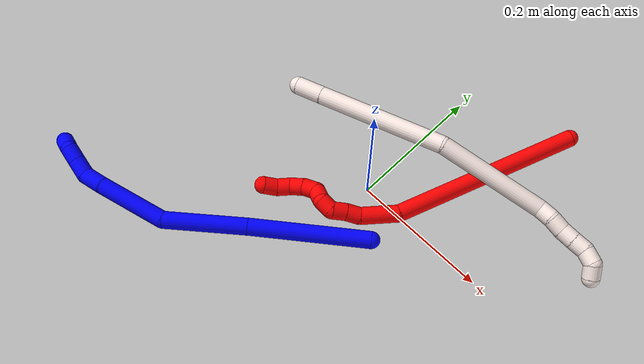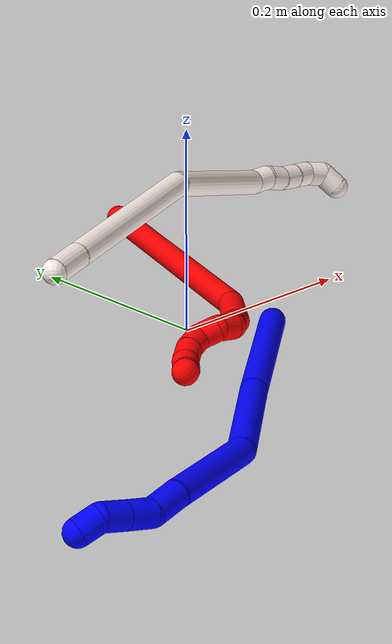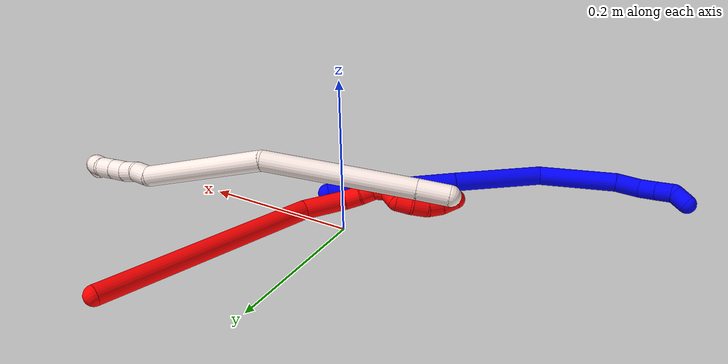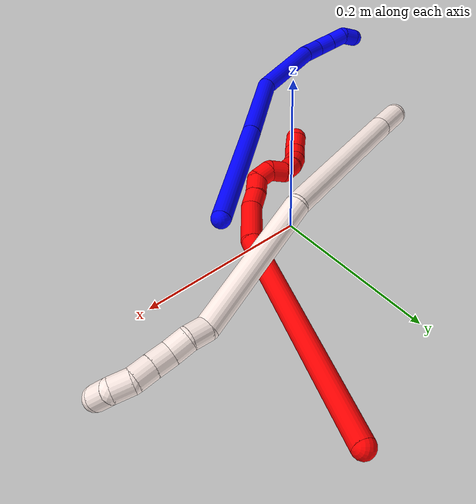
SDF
<sdf version="1.7">
 <world name="default">
  <model name="photoneo_s_sensor">
   <static>1</static>
   <pose>0 0 2 1.57079 1.57079 3.14159</pose>
   <link name="link">
    <inertial><mass>0.1</mass></inertial>
    <sensor name="sensor" type="depth">
     <update_rate>30</update_rate>
     <camera>
      <horizontal_fov>1.22</horizontal_fov>
      <image><width>1920</width><height>1200</height><format>B8G8R8</format></image>
      <clip><near>0.1</near><far>4</far></clip>
      <depth_camera><output>points</output></depth_camera>
     </camera>
     <plugin name="camera_plugin" filename="libgazebo_ros_depth_camera.so">
      <baseline>0.2</baseline>
      <alwaysOn>1</alwaysOn>
      <updateRate>0.0</updateRate>
      <cameraName>camera_ir</cameraName>
      <imageTopicName>/camera/color/image_raw</imageTopicName>
      <cameraInfoTopicName>/camera/color/camera_info</cameraInfoTopicName>
      <depthImageTopicName>/camera/depth/image_raw</depthImageTopicName>
      <depthImageCameraInfoTopicName>/camera/depth/camera_info</depthImageCameraInfoTopicName>
      <pointCloudTopicName>/camera/depth/points</pointCloudTopicName>
      <frameName>fr_optical</frameName>
      <pointCloudCutoff>0.1</pointCloudCutoff>
      <pointCloudCutoffMax>2.0</pointCloudCutoffMax>
      <distortionK1>0</distortionK1>
      <distortionK2>0</distortionK2>
      <distortionK3>0</distortionK3>
      <distortionT1>0</distortionT1>
      <distortionT2>0</distortionT2>
      <CxPrime>0</CxPrime>
      <Cx>0</Cx>
      <Cy>0</Cy>
      <focalLength>0</focalLength>
      <hackBaseline>0</hackBaseline>
     </plugin>
    </sensor>
   </link>
  </model>
  <model name="bin">
   <static>1</static>
   <link name="bottom">
    <collision name="collision-bottom">
     <pose>0 0 -0.01 0 -0 0</pose>
     <geometry><box><size>0.8 0.6 0.02</size></box></geometry>
     <surface>
      <friction><ode><mu>100</mu><mu2>100</mu2></ode></friction>
      <contact><collide_bitmask>65535</collide_bitmask></contact>
     </surface>
    </collision>
   </link>
   <link name="west_wall">
    <collision name="collision-west_wall">
     <pose>-0.41 0 0.1 0 -0 0</pose>
     <geometry><box><size>0.02 0.6 0.2</size></box></geometry>
     <surface>
      <friction><ode><mu>100</mu><mu2>100</mu2></ode></friction>
      <contact><collide_bitmask>65535</collide_bitmask></contact>
     </surface>
    </collision>
   </link>
   <link name="east_wall">
    <collision name="collision-east_wall">
     <pose>0.41 0 0.1 0 -0 0</pose>
     <geometry><box><size>0.02 0.6 0.2</size></box></geometry>
     <surface>
      <friction><ode><mu>100</mu><mu2>100</mu2></ode></friction>
      <contact><collide_bitmask>65535</collide_bitmask></contact>
     </surface>
    </collision>
   </link>
   <link name="south_wall">
    <collision name="collision-south_wall">
     <pose>0 -0.31 0.1 0 -0 0</pose>
     <geometry><box><size>0.8 0.02 0.2</size></box></geometry>
     <surface>
      <friction><ode><mu>100</mu><mu2>100</mu2></ode></friction>
      <contact><collide_bitmask>65535</collide_bitmask></contact>
     </surface>
    </collision>
   </link>
   <link name="north_wall">
    <collision name="collision-north_wall">
     <pose>0 0.31 0.1 0 -0 0</pose>
     <geometry><box><size>0.8 0.02 0.2</size></box></geometry>
     <surface>
      <friction><ode><mu>100</mu><mu2>100</mu2></ode></friction>
      <contact><collide_bitmask>65535</collide_bitmask></contact>
     </surface>
    </collision>
   </link>
  </model>
  <model name="1">
   <static>0</static>
   <link name="1">
    <collision name="collision-cylinder-e_1_1_4">
     <pose>-0.046609 -0.000448 0.073208 0.006125 -0.566937 -0.001784</pose>
     <geometry><cylinder><radius>0.0125</radius><length>0.173574</length></cylinder></geometry>
     <surface>
      <friction><ode><mu>1.16</mu><mu2>1.16</mu2><slip1>0</slip1><slip2>0</slip2></ode></friction>
      <contact><ode><kp>1e+06</kp><kd>1</kd><max_vel>0</max_vel><min_depth>0.001</min_depth></ode></contact>
     </surface>
    </collision>
    <visual name="visual-cylinder-e_1_1_4">
     <pose>-0.046609 -0.000448 0.073208 0.006125 -0.566937 -0.001784</pose>
     <geometry><cylinder><radius>0.0125</radius><length>0.173574</length></cylinder></geometry>
     <material><ambient>0 0 1 1</ambient></material>
    </visual>
    <collision name="collision-cylinder-e_2_4_5">
     <pose>-0.125567 0.000679 0.197621 -0.030757 -0.563217 0.008899</pose>
     <geometry><cylinder><radius>0.0125</radius><length>0.121177</length></cylinder></geometry>
     <surface>
      <friction><ode><mu>1.16</mu><mu2>1.16</mu2><slip1>0</slip1><slip2>0</slip2></ode></friction>
      <contact><ode><kp>1e+06</kp><kd>1</kd><max_vel>0</max_vel><min_depth>0.001</min_depth></ode></contact>
     </surface>
    </collision>
    <visual name="visual-cylinder-e_2_4_5">
     <pose>-0.125567 0.000679 0.197621 -0.030757 -0.563217 0.008899</pose>
     <geometry><cylinder><radius>0.0125</radius><length>0.121177</length></cylinder></geometry>
     <material><ambient>0 0 1 1</ambient></material>
    </visual>
    <collision name="collision-cylinder-e_3_5_6">
     <pose>-0.172079 -0.014183 0.295765 0.336834 -0.277445 -0.047469</pose>
     <geometry><cylinder><radius>0.0125</radius><length>0.103421</length></cylinder></geometry>
     <surface>
      <friction><ode><mu>1.16</mu><mu2>1.16</mu2><slip1>0</slip1><slip2>0</slip2></ode></friction>
      <contact><ode><kp>1e+06</kp><kd>1</kd><max_vel>0</max_vel><min_depth>0.001</min_depth></ode></contact>
     </surface>
    </collision>
    <visual name="visual-cylinder-e_3_5_6">
     <pose>-0.172079 -0.014183 0.295765 0.336834 -0.277445 -0.047469</pose>
     <geometry><cylinder><radius>0.0125</radius><length>0.103421</length></cylinder></geometry>
     <material><ambient>0 0 1 1</ambient></material>
    </visual>
    <collision name="collision-cylinder-e_4_6_7">
     <pose>-0.188231 -0.035077 0.358179 0.280424 -0.122898 -0.017367</pose>
     <geometry><cylinder><radius>0.0125</radius><length>0.032454</length></cylinder></geometry>
     <surface>
      <friction><ode><mu>1.16</mu><mu2>1.16</mu2><slip1>0</slip1><slip2>0</slip2></ode></friction>
      <contact><ode><kp>1e+06</kp><kd>1</kd><max_vel>0</max_vel><min_depth>0.001</min_depth></ode></contact>
     </surface>
    </collision>
    <visual name="visual-cylinder-e_4_6_7">
     <pose>-0.188231 -0.035077 0.358179 0.280424 -0.122898 -0.017367</pose>
     <geometry><cylinder><radius>0.0125</radius><length>0.032454</length></cylinder></geometry>
     <material><ambient>0 0 1 1</ambient></material>
    </visual>
    <collision name="collision-cylinder-e_5_7_8">
     <pose>-0.19057 -0.048029 0.383093 0.732843 -0.027501 -0.010554</pose>
     <geometry><cylinder><radius>0.0125</radius><length>0.025407</length></cylinder></geometry>
     <surface>
      <friction><ode><mu>1.16</mu><mu2>1.16</mu2><slip1>0</slip1><slip2>0</slip2></ode></friction>
      <contact><ode><kp>1e+06</kp><kd>1</kd><max_vel>0</max_vel><min_depth>0.001</min_depth></ode></contact>
     </surface>
    </collision>
    <visual name="visual-cylinder-e_5_7_8">
     <pose>-0.19057 -0.048029 0.383093 0.732843 -0.027501 -0.010554</pose>
     <geometry><cylinder><radius>0.0125</radius><length>0.025407</length></cylinder></geometry>
     <material><ambient>0 0 1 1</ambient></material>
    </visual>
    <collision name="collision-cylinder-e_6_8_9">
     <pose>-0.191324 -0.064373 0.400925 0.751887 -0.035251 -0.013915</pose>
     <geometry><cylinder><radius>0.0125</radius><length>0.022998</length></cylinder></geometry>
     <surface>
      <friction><ode><mu>1.16</mu><mu2>1.16</mu2><slip1>0</slip1><slip2>0</slip2></ode></friction>
      <contact><ode><kp>1e+06</kp><kd>1</kd><max_vel>0</max_vel><min_depth>0.001</min_depth></ode></contact>
     </surface>
    </collision>
    <visual name="visual-cylinder-e_6_8_9">
     <pose>-0.191324 -0.064373 0.400925 0.751887 -0.035251 -0.013915</pose>
     <geometry><cylinder><radius>0.0125</radius><length>0.022998</length></cylinder></geometry>
     <material><ambient>0 0 1 1</ambient></material>
    </visual>
    <collision name="collision-cylinder-e_7_9_2">
     <pose>-0.18761 -0.075183 0.418495 0.312121 0.403773 0.064385</pose>
     <geometry><cylinder><radius>0.0125</radius><length>0.02097</length></cylinder></geometry>
     <surface>
      <friction><ode><mu>1.16</mu><mu2>1.16</mu2><slip1>0</slip1><slip2>0</slip2></ode></friction>
      <contact><ode><kp>1e+06</kp><kd>1</kd><max_vel>0</max_vel><min_depth>0.001</min_depth></ode></contact>
     </surface>
    </collision>
    <visual name="visual-cylinder-e_7_9_2">
     <pose>-0.18761 -0.075183 0.418495 0.312121 0.403773 0.064385</pose>
     <geometry><cylinder><radius>0.0125</radius><length>0.02097</length></cylinder></geometry>
     <material><ambient>0 0 1 1</ambient></material>
    </visual>
    <collision name="collision-sphere-2">
     <pose>-0.183491 -0.078144 0.427671 0 -0 0</pose>
     <geometry><sphere><radius>0.0125</radius></sphere></geometry>
     <surface>
      <friction><ode><mu>1.16</mu><mu2>1.16</mu2><slip1>0</slip1><slip2>0</slip2></ode></friction>
      <contact><ode><kp>1e+06</kp><kd>1</kd><max_vel>0</max_vel><min_depth>0.001</min_depth></ode></contact>
     </surface>
    </collision>
    <visual name="visual-sphere-2">
     <pose>-0.183491 -0.078144 0.427671 0 -0 0</pose>
     <geometry><sphere><radius>0.0125</radius></sphere></geometry>
     <material><ambient>0 0 1 1</ambient></material>
    </visual>
    <collision name="collision-sphere-9">
     <pose>-0.19173 -0.072222 0.409319 0 -0 0</pose>
     <geometry><sphere><radius>0.0125</radius></sphere></geometry>
     <surface>
      <friction><ode><mu>1.16</mu><mu2>1.16</mu2><slip1>0</slip1><slip2>0</slip2></ode></friction>
      <contact><ode><kp>1e+06</kp><kd>1</kd><max_vel>0</max_vel><min_depth>0.001</min_depth></ode></contact>
     </surface>
    </collision>
    <visual name="visual-sphere-9">
     <pose>-0.19173 -0.072222 0.409319 0 -0 0</pose>
     <geometry><sphere><radius>0.0125</radius></sphere></geometry>
     <material><ambient>0 0 1 1</ambient></material>
    </visual>
    <collision name="collision-sphere-4">
     <pose>-0.093218 -0.000897 0.146415 0 -0 0</pose>
     <geometry><sphere><radius>0.0125</radius></sphere></geometry>
     <surface>
      <friction><ode><mu>1.16</mu><mu2>1.16</mu2><slip1>0</slip1><slip2>0</slip2></ode></friction>
      <contact><ode><kp>1e+06</kp><kd>1</kd><max_vel>0</max_vel><min_depth>0.001</min_depth></ode></contact>
     </surface>
    </collision>
    <visual name="visual-sphere-4">
     <pose>-0.093218 -0.000897 0.146415 0 -0 0</pose>
     <geometry><sphere><radius>0.0125</radius></sphere></geometry>
     <material><ambient>0 0 1 1</ambient></material>
    </visual>
    <collision name="collision-sphere-1">
     <geometry><sphere><radius>0.0125</radius></sphere></geometry>
     <surface>
      <friction><ode><mu>1.16</mu><mu2>1.16</mu2><slip1>0</slip1><slip2>0</slip2></ode></friction>
      <contact><ode><kp>1e+06</kp><kd>1</kd><max_vel>0</max_vel><min_depth>0.001</min_depth></ode></contact>
     </surface>
    </collision>
    <visual name="visual-sphere-1">
     <geometry><sphere><radius>0.0125</radius></sphere></geometry>
     <material><ambient>0 0 1 1</ambient></material>
    </visual>
    <collision name="collision-sphere-8">
     <pose>-0.190919 -0.056524 0.392532 0 -0 0</pose>
     <geometry><sphere><radius>0.0125</radius></sphere></geometry>
     <surface>
      <friction><ode><mu>1.16</mu><mu2>1.16</mu2><slip1>0</slip1><slip2>0</slip2></ode></friction>
      <contact><ode><kp>1e+06</kp><kd>1</kd><max_vel>0</max_vel><min_depth>0.001</min_depth></ode></contact>
     </surface>
    </collision>
    <visual name="visual-sphere-8">
     <pose>-0.190919 -0.056524 0.392532 0 -0 0</pose>
     <geometry><sphere><radius>0.0125</radius></sphere></geometry>
     <material><ambient>0 0 1 1</ambient></material>
    </visual>
    <collision name="collision-sphere-5">
     <pose>-0.157915 0.002254 0.248827 0 -0 0</pose>
     <geometry><sphere><radius>0.0125</radius></sphere></geometry>
     <surface>
      <friction><ode><mu>1.16</mu><mu2>1.16</mu2><slip1>0</slip1><slip2>0</slip2></ode></friction>
      <contact><ode><kp>1e+06</kp><kd>1</kd><max_vel>0</max_vel><min_depth>0.001</min_depth></ode></contact>
     </surface>
    </collision>
    <visual name="visual-sphere-5">
     <pose>-0.157915 0.002254 0.248827 0 -0 0</pose>
     <geometry><sphere><radius>0.0125</radius></sphere></geometry>
     <material><ambient>0 0 1 1</ambient></material>
    </visual>
    <collision name="collision-sphere-6">
     <pose>-0.186242 -0.030619 0.342703 0 -0 0</pose>
     <geometry><sphere><radius>0.0125</radius></sphere></geometry>
     <surface>
      <friction><ode><mu>1.16</mu><mu2>1.16</mu2><slip1>0</slip1><slip2>0</slip2></ode></friction>
      <contact><ode><kp>1e+06</kp><kd>1</kd><max_vel>0</max_vel><min_depth>0.001</min_depth></ode></contact>
     </surface>
    </collision>
    <visual name="visual-sphere-6">
     <pose>-0.186242 -0.030619 0.342703 0 -0 0</pose>
     <geometry><sphere><radius>0.0125</radius></sphere></geometry>
     <material><ambient>0 0 1 1</ambient></material>
    </visual>
    <collision name="collision-sphere-7">
     <pose>-0.190221 -0.039534 0.373655 0 -0 0</pose>
     <geometry><sphere><radius>0.0125</radius></sphere></geometry>
     <surface>
      <friction><ode><mu>1.16</mu><mu2>1.16</mu2><slip1>0</slip1><slip2>0</slip2></ode></friction>
      <contact><ode><kp>1e+06</kp><kd>1</kd><max_vel>0</max_vel><min_depth>0.001</min_depth></ode></contact>
     </surface>
    </collision>
    <visual name="visual-sphere-7">
     <pose>-0.190221 -0.039534 0.373655 0 -0 0</pose>
     <geometry><sphere><radius>0.0125</radius></sphere></geometry>
     <material><ambient>0 0 1 1</ambient></material>
    </visual>
    <inertial>
     <pose>-0.120774 -0.013756 0.213192 0 -0 0</pose>
     <mass>0.5</mass>
     <inertia>
      <ixx>0.000587</ixx>
      <ixy>0</ixy>
      <ixz>0</ixz>
      <iyy>0.000685</iyy>
      <iyz>0</iyz>
      <izz>0.000413</izz>
     </inertia>
    </inertial>
   </link>
   <pose>0.060442 -0.055634 0.009029 -2.09292 0.674438 1.49955</pose>
  </model>
  <model name="2">
   <static>0</static>
   <link name="2">
    <collision name="collision-cylinder-e_1_1_4">
     <pose>-0.033796 -0.137193 -0.001831 1.58414 -0.241508 -0.244721</pose>
     <geometry><cylinder><radius>0.0125</radius><length>0.282613</length></cylinder></geometry>
     <surface>
      <friction><ode><mu>1.16</mu><mu2>1.16</mu2><slip1>0</slip1><slip2>0</slip2></ode></friction>
      <contact><ode><kp>1e+06</kp><kd>1</kd><max_vel>0</max_vel><min_depth>0.001</min_depth></ode></contact>
     </surface>
    </collision>
    <visual name="visual-cylinder-e_1_1_4">
     <pose>-0.033796 -0.137193 -0.001831 1.58414 -0.241508 -0.244721</pose>
     <geometry><cylinder><radius>0.0125</radius><length>0.282613</length></cylinder></geometry>
     <material><ambient>1 0 0 1</ambient></material>
    </visual>
    <collision name="collision-cylinder-e_2_4_5">
     <pose>-0.079992 -0.297947 -0.011154 1.87865 -0.464911 -0.626091</pose>
     <geometry><cylinder><radius>0.0125</radius><length>0.055316</length></cylinder></geometry>
     <surface>
      <friction><ode><mu>1.16</mu><mu2>1.16</mu2><slip1>0</slip1><slip2>0</slip2></ode></friction>
      <contact><ode><kp>1e+06</kp><kd>1</kd><max_vel>0</max_vel><min_depth>0.001</min_depth></ode></contact>
     </surface>
    </collision>
    <visual name="visual-cylinder-e_2_4_5">
     <pose>-0.079992 -0.297947 -0.011154 1.87865 -0.464911 -0.626091</pose>
     <geometry><cylinder><radius>0.0125</radius><length>0.055316</length></cylinder></geometry>
     <material><ambient>1 0 0 1</ambient></material>
    </visual>
    <collision name="collision-cylinder-e_3_5_6">
     <pose>-0.099783 -0.32802 -0.022099 2.05838 -0.786652 -1.20759</pose>
     <geometry><cylinder><radius>0.0125</radius><length>0.020878</length></cylinder></geometry>
     <surface>
      <friction><ode><mu>1.16</mu><mu2>1.16</mu2><slip1>0</slip1><slip2>0</slip2></ode></friction>
      <contact><ode><kp>1e+06</kp><kd>1</kd><max_vel>0</max_vel><min_depth>0.001</min_depth></ode></contact>
     </surface>
    </collision>
    <visual name="visual-cylinder-e_3_5_6">
     <pose>-0.099783 -0.32802 -0.022099 2.05838 -0.786652 -1.20759</pose>
     <geometry><cylinder><radius>0.0125</radius><length>0.020878</length></cylinder></geometry>
     <material><ambient>1 0 0 1</ambient></material>
    </visual>
    <collision name="collision-cylinder-e_4_6_7">
     <pose>-0.113868 -0.342223 -0.027759 1.85023 -0.696734 -0.898365</pose>
     <geometry><cylinder><radius>0.0125</radius><length>0.020863</length></cylinder></geometry>
     <surface>
      <friction><ode><mu>1.16</mu><mu2>1.16</mu2><slip1>0</slip1><slip2>0</slip2></ode></friction>
      <contact><ode><kp>1e+06</kp><kd>1</kd><max_vel>0</max_vel><min_depth>0.001</min_depth></ode></contact>
     </surface>
    </collision>
    <visual name="visual-cylinder-e_4_6_7">
     <pose>-0.113868 -0.342223 -0.027759 1.85023 -0.696734 -0.898365</pose>
     <geometry><cylinder><radius>0.0125</radius><length>0.020863</length></cylinder></geometry>
     <material><ambient>1 0 0 1</ambient></material>
    </visual>
    <collision name="collision-cylinder-e_5_7_8">
     <pose>-0.127657 -0.351523 -0.036827 2.9111 -0.788715 -2.59898</pose>
     <geometry><cylinder><radius>0.0125</radius><length>0.020001</length></cylinder></geometry>
     <surface>
      <friction><ode><mu>1.16</mu><mu2>1.16</mu2><slip1>0</slip1><slip2>0</slip2></ode></friction>
      <contact><ode><kp>1e+06</kp><kd>1</kd><max_vel>0</max_vel><min_depth>0.001</min_depth></ode></contact>
     </surface>
    </collision>
    <visual name="visual-cylinder-e_5_7_8">
     <pose>-0.127657 -0.351523 -0.036827 2.9111 -0.788715 -2.59898</pose>
     <geometry><cylinder><radius>0.0125</radius><length>0.020001</length></cylinder></geometry>
     <material><ambient>1 0 0 1</ambient></material>
    </visual>
    <collision name="collision-cylinder-e_6_8_9">
     <pose>-0.136851 -0.351537 -0.053388 -2.97846 -0.210443 1.8242</pose>
     <geometry><cylinder><radius>0.0125</radius><length>0.020102</length></cylinder></geometry>
     <surface>
      <friction><ode><mu>1.16</mu><mu2>1.16</mu2><slip1>0</slip1><slip2>0</slip2></ode></friction>
      <contact><ode><kp>1e+06</kp><kd>1</kd><max_vel>0</max_vel><min_depth>0.001</min_depth></ode></contact>
     </surface>
    </collision>
    <visual name="visual-cylinder-e_6_8_9">
     <pose>-0.136851 -0.351537 -0.053388 -2.97846 -0.210443 1.8242</pose>
     <geometry><cylinder><radius>0.0125</radius><length>0.020102</length></cylinder></geometry>
     <material><ambient>1 0 0 1</ambient></material>
    </visual>
    <collision name="collision-cylinder-e_7_9_10">
     <pose>-0.14292 -0.355347 -0.070584 2.51683 -0.405623 -1.13399</pose>
     <geometry><cylinder><radius>0.0125</radius><length>0.020118</length></cylinder></geometry>
     <surface>
      <friction><ode><mu>1.16</mu><mu2>1.16</mu2><slip1>0</slip1><slip2>0</slip2></ode></friction>
      <contact><ode><kp>1e+06</kp><kd>1</kd><max_vel>0</max_vel><min_depth>0.001</min_depth></ode></contact>
     </surface>
    </collision>
    <visual name="visual-cylinder-e_7_9_10">
     <pose>-0.14292 -0.355347 -0.070584 2.51683 -0.405623 -1.13399</pose>
     <geometry><cylinder><radius>0.0125</radius><length>0.020118</length></cylinder></geometry>
     <material><ambient>1 0 0 1</ambient></material>
    </visual>
    <collision name="collision-cylinder-e_8_10_11">
     <pose>-0.149825 -0.368186 -0.084093 2.25096 -0.297907 -0.609247</pose>
     <geometry><cylinder><radius>0.0125</radius><length>0.020002</length></cylinder></geometry>
     <surface>
      <friction><ode><mu>1.16</mu><mu2>1.16</mu2><slip1>0</slip1><slip2>0</slip2></ode></friction>
      <contact><ode><kp>1e+06</kp><kd>1</kd><max_vel>0</max_vel><min_depth>0.001</min_depth></ode></contact>
     </surface>
    </collision>
    <visual name="visual-cylinder-e_8_10_11">
     <pose>-0.149825 -0.368186 -0.084093 2.25096 -0.297907 -0.609247</pose>
     <geometry><cylinder><radius>0.0125</radius><length>0.020002</length></cylinder></geometry>
     <material><ambient>1 0 0 1</ambient></material>
    </visual>
    <collision name="collision-cylinder-e_9_11_12">
     <pose>-0.156824 -0.384148 -0.093435 1.94295 -0.417764 -0.601749</pose>
     <geometry><cylinder><radius>0.0125</radius><length>0.020034</length></cylinder></geometry>
     <surface>
      <friction><ode><mu>1.16</mu><mu2>1.16</mu2><slip1>0</slip1><slip2>0</slip2></ode></friction>
      <contact><ode><kp>1e+06</kp><kd>1</kd><max_vel>0</max_vel><min_depth>0.001</min_depth></ode></contact>
     </surface>
    </collision>
    <visual name="visual-cylinder-e_9_11_12">
     <pose>-0.156824 -0.384148 -0.093435 1.94295 -0.417764 -0.601749</pose>
     <geometry><cylinder><radius>0.0125</radius><length>0.020034</length></cylinder></geometry>
     <material><ambient>1 0 0 1</ambient></material>
    </visual>
    <collision name="collision-cylinder-e_10_12_2">
     <pose>-0.167802 -0.39967 -0.098774 1.8506 -0.759863 -0.975087</pose>
     <geometry><cylinder><radius>0.0125</radius><length>0.020072</length></cylinder></geometry>
     <surface>
      <friction><ode><mu>1.16</mu><mu2>1.16</mu2><slip1>0</slip1><slip2>0</slip2></ode></friction>
      <contact><ode><kp>1e+06</kp><kd>1</kd><max_vel>0</max_vel><min_depth>0.001</min_depth></ode></contact>
     </surface>
    </collision>
    <visual name="visual-cylinder-e_10_12_2">
     <pose>-0.167802 -0.39967 -0.098774 1.8506 -0.759863 -0.975087</pose>
     <geometry><cylinder><radius>0.0125</radius><length>0.020072</length></cylinder></geometry>
     <material><ambient>1 0 0 1</ambient></material>
    </visual>
    <collision name="collision-sphere-2">
     <pose>-0.174715 -0.406662 -0.100783 0 -0 0</pose>
     <geometry><sphere><radius>0.0125</radius></sphere></geometry>
     <surface>
      <friction><ode><mu>1.16</mu><mu2>1.16</mu2><slip1>0</slip1><slip2>0</slip2></ode></friction>
      <contact><ode><kp>1e+06</kp><kd>1</kd><max_vel>0</max_vel><min_depth>0.001</min_depth></ode></contact>
     </surface>
    </collision>
    <visual name="visual-sphere-2">
     <pose>-0.174715 -0.406662 -0.100783 0 -0 0</pose>
     <geometry><sphere><radius>0.0125</radius></sphere></geometry>
     <material><ambient>1 0 0 1</ambient></material>
    </visual>
    <collision name="collision-sphere-12">
     <pose>-0.160889 -0.392677 -0.096764 0 -0 0</pose>
     <geometry><sphere><radius>0.0125</radius></sphere></geometry>
     <surface>
      <friction><ode><mu>1.16</mu><mu2>1.16</mu2><slip1>0</slip1><slip2>0</slip2></ode></friction>
      <contact><ode><kp>1e+06</kp><kd>1</kd><max_vel>0</max_vel><min_depth>0.001</min_depth></ode></contact>
     </surface>
    </collision>
    <visual name="visual-sphere-12">
     <pose>-0.160889 -0.392677 -0.096764 0 -0 0</pose>
     <geometry><sphere><radius>0.0125</radius></sphere></geometry>
     <material><ambient>1 0 0 1</ambient></material>
    </visual>
    <collision name="collision-sphere-11">
     <pose>-0.15276 -0.375619 -0.090106 0 -0 0</pose>
     <geometry><sphere><radius>0.0125</radius></sphere></geometry>
     <surface>
      <friction><ode><mu>1.16</mu><mu2>1.16</mu2><slip1>0</slip1><slip2>0</slip2></ode></friction>
      <contact><ode><kp>1e+06</kp><kd>1</kd><max_vel>0</max_vel><min_depth>0.001</min_depth></ode></contact>
     </surface>
    </collision>
    <visual name="visual-sphere-11">
     <pose>-0.15276 -0.375619 -0.090106 0 -0 0</pose>
     <geometry><sphere><radius>0.0125</radius></sphere></geometry>
     <material><ambient>1 0 0 1</ambient></material>
    </visual>
    <collision name="collision-sphere-10">
     <pose>-0.146889 -0.360753 -0.07808 0 -0 0</pose>
     <geometry><sphere><radius>0.0125</radius></sphere></geometry>
     <surface>
      <friction><ode><mu>1.16</mu><mu2>1.16</mu2><slip1>0</slip1><slip2>0</slip2></ode></friction>
      <contact><ode><kp>1e+06</kp><kd>1</kd><max_vel>0</max_vel><min_depth>0.001</min_depth></ode></contact>
     </surface>
    </collision>
    <visual name="visual-sphere-10">
     <pose>-0.146889 -0.360753 -0.07808 0 -0 0</pose>
     <geometry><sphere><radius>0.0125</radius></sphere></geometry>
     <material><ambient>1 0 0 1</ambient></material>
    </visual>
    <collision name="collision-sphere-9">
     <pose>-0.138951 -0.349941 -0.063087 0 -0 0</pose>
     <geometry><sphere><radius>0.0125</radius></sphere></geometry>
     <surface>
      <friction><ode><mu>1.16</mu><mu2>1.16</mu2><slip1>0</slip1><slip2>0</slip2></ode></friction>
      <contact><ode><kp>1e+06</kp><kd>1</kd><max_vel>0</max_vel><min_depth>0.001</min_depth></ode></contact>
     </surface>
    </collision>
    <visual name="visual-sphere-9">
     <pose>-0.138951 -0.349941 -0.063087 0 -0 0</pose>
     <geometry><sphere><radius>0.0125</radius></sphere></geometry>
     <material><ambient>1 0 0 1</ambient></material>
    </visual>
    <collision name="collision-sphere-4">
     <pose>-0.067592 -0.274387 -0.003662 0 -0 0</pose>
     <geometry><sphere><radius>0.0125</radius></sphere></geometry>
     <surface>
      <friction><ode><mu>1.16</mu><mu2>1.16</mu2><slip1>0</slip1><slip2>0</slip2></ode></friction>
      <contact><ode><kp>1e+06</kp><kd>1</kd><max_vel>0</max_vel><min_depth>0.001</min_depth></ode></contact>
     </surface>
    </collision>
    <visual name="visual-sphere-4">
     <pose>-0.067592 -0.274387 -0.003662 0 -0 0</pose>
     <geometry><sphere><radius>0.0125</radius></sphere></geometry>
     <material><ambient>1 0 0 1</ambient></material>
    </visual>
    <collision name="collision-sphere-1">
     <geometry><sphere><radius>0.0125</radius></sphere></geometry>
     <surface>
      <friction><ode><mu>1.16</mu><mu2>1.16</mu2><slip1>0</slip1><slip2>0</slip2></ode></friction>
      <contact><ode><kp>1e+06</kp><kd>1</kd><max_vel>0</max_vel><min_depth>0.001</min_depth></ode></contact>
     </surface>
    </collision>
    <visual name="visual-sphere-1">
     <geometry><sphere><radius>0.0125</radius></sphere></geometry>
     <material><ambient>1 0 0 1</ambient></material>
    </visual>
    <collision name="collision-sphere-8">
     <pose>-0.134752 -0.353134 -0.043689 0 -0 0</pose>
     <geometry><sphere><radius>0.0125</radius></sphere></geometry>
     <surface>
      <friction><ode><mu>1.16</mu><mu2>1.16</mu2><slip1>0</slip1><slip2>0</slip2></ode></friction>
      <contact><ode><kp>1e+06</kp><kd>1</kd><max_vel>0</max_vel><min_depth>0.001</min_depth></ode></contact>
     </surface>
    </collision>
    <visual name="visual-sphere-8">
     <pose>-0.134752 -0.353134 -0.043689 0 -0 0</pose>
     <geometry><sphere><radius>0.0125</radius></sphere></geometry>
     <material><ambient>1 0 0 1</ambient></material>
    </visual>
    <collision name="collision-sphere-5">
     <pose>-0.092392 -0.321507 -0.018645 0 -0 0</pose>
     <geometry><sphere><radius>0.0125</radius></sphere></geometry>
     <surface>
      <friction><ode><mu>1.16</mu><mu2>1.16</mu2><slip1>0</slip1><slip2>0</slip2></ode></friction>
      <contact><ode><kp>1e+06</kp><kd>1</kd><max_vel>0</max_vel><min_depth>0.001</min_depth></ode></contact>
     </surface>
    </collision>
    <visual name="visual-sphere-5">
     <pose>-0.092392 -0.321507 -0.018645 0 -0 0</pose>
     <geometry><sphere><radius>0.0125</radius></sphere></geometry>
     <material><ambient>1 0 0 1</ambient></material>
    </visual>
    <collision name="collision-sphere-6">
     <pose>-0.107174 -0.334533 -0.025552 0 -0 0</pose>
     <geometry><sphere><radius>0.0125</radius></sphere></geometry>
     <surface>
      <friction><ode><mu>1.16</mu><mu2>1.16</mu2><slip1>0</slip1><slip2>0</slip2></ode></friction>
      <contact><ode><kp>1e+06</kp><kd>1</kd><max_vel>0</max_vel><min_depth>0.001</min_depth></ode></contact>
     </surface>
    </collision>
    <visual name="visual-sphere-6">
     <pose>-0.107174 -0.334533 -0.025552 0 -0 0</pose>
     <geometry><sphere><radius>0.0125</radius></sphere></geometry>
     <material><ambient>1 0 0 1</ambient></material>
    </visual>
    <collision name="collision-sphere-7">
     <pose>-0.120562 -0.349913 -0.029966 0 -0 0</pose>
     <geometry><sphere><radius>0.0125</radius></sphere></geometry>
     <surface>
      <friction><ode><mu>1.16</mu><mu2>1.16</mu2><slip1>0</slip1><slip2>0</slip2></ode></friction>
      <contact><ode><kp>1e+06</kp><kd>1</kd><max_vel>0</max_vel><min_depth>0.001</min_depth></ode></contact>
     </surface>
    </collision>
    <visual name="visual-sphere-7">
     <pose>-0.120562 -0.349913 -0.029966 0 -0 0</pose>
     <geometry><sphere><radius>0.0125</radius></sphere></geometry>
     <material><ambient>1 0 0 1</ambient></material>
    </visual>
    <inertial>
     <pose>-0.072243 -0.227143 -0.021883 0 -0 0</pose>
     <mass>0.5</mass>
     <inertia>
      <ixx>0.001325</ixx>
      <ixy>0</ixy>
      <ixz>0</ixz>
      <iyy>-0.000402</iyy>
      <iyz>0</iyz>
      <izz>0.002315</izz>
     </inertia>
    </inertial>
   </link>
   <pose>0.15329 0.266976 0.011496 0.339896 0.952012 0.088383</pose>
  </model>
  <model name="11">
   <static>0</static>
   <link name="11">
    <collision name="collision-cylinder-e_1_1_4">
     <pose>0.018721 -0.00273 -0.002509 2.31399 1.37529 2.15962</pose>
     <geometry><cylinder><radius>0.0125</radius><length>0.03817</length></cylinder></geometry>
     <surface>
      <friction><ode><mu>1.16</mu><mu2>1.16</mu2><slip1>0</slip1><slip2>0</slip2></ode></friction>
      <contact><ode><kp>1e+06</kp><kd>1</kd><max_vel>0</max_vel><min_depth>0.001</min_depth></ode></contact>
     </surface>
    </collision>
    <visual name="visual-cylinder-e_1_1_4">
     <pose>0.018721 -0.00273 -0.002509 2.31399 1.37529 2.15962</pose>
     <geometry><cylinder><radius>0.0125</radius><length>0.03817</length></cylinder></geometry>
     <material><ambient>1 0.933333 0.909804 1</ambient></material>
    </visual>
    <collision name="collision-cylinder-e_2_4_5">
     <pose>0.128484 -0.01811 -0.015867 2.27976 1.38975 2.13356</pose>
     <geometry><cylinder><radius>0.0125</radius><length>0.185108</length></cylinder></geometry>
     <surface>
      <friction><ode><mu>1.16</mu><mu2>1.16</mu2><slip1>0</slip1><slip2>0</slip2></ode></friction>
      <contact><ode><kp>1e+06</kp><kd>1</kd><max_vel>0</max_vel><min_depth>0.001</min_depth></ode></contact>
     </surface>
    </collision>
    <visual name="visual-cylinder-e_2_4_5">
     <pose>0.128484 -0.01811 -0.015867 2.27976 1.38975 2.13356</pose>
     <geometry><cylinder><radius>0.0125</radius><length>0.185108</length></cylinder></geometry>
     <material><ambient>1 0.933333 0.909804 1</ambient></material>
    </visual>
    <collision name="collision-cylinder-e_3_5_6">
     <pose>0.295476 -0.014783 -0.031356 -1.85339 1.35517 -1.63985</pose>
     <geometry><cylinder><radius>0.0125</radius><length>0.155502</length></cylinder></geometry>
     <surface>
      <friction><ode><mu>1.16</mu><mu2>1.16</mu2><slip1>0</slip1><slip2>0</slip2></ode></friction>
      <contact><ode><kp>1e+06</kp><kd>1</kd><max_vel>0</max_vel><min_depth>0.001</min_depth></ode></contact>
     </surface>
    </collision>
    <visual name="visual-cylinder-e_3_5_6">
     <pose>0.295476 -0.014783 -0.031356 -1.85339 1.35517 -1.63985</pose>
     <geometry><cylinder><radius>0.0125</radius><length>0.155502</length></cylinder></geometry>
     <material><ambient>1 0.933333 0.909804 1</ambient></material>
    </visual>
    <collision name="collision-cylinder-e_4_6_7">
     <pose>0.38086 0.001053 -0.040177 3.10833 1.15328 3.09046</pose>
     <geometry><cylinder><radius>0.0125</radius><length>0.02064</length></cylinder></geometry>
     <surface>
      <friction><ode><mu>1.16</mu><mu2>1.16</mu2><slip1>0</slip1><slip2>0</slip2></ode></friction>
      <contact><ode><kp>1e+06</kp><kd>1</kd><max_vel>0</max_vel><min_depth>0.001</min_depth></ode></contact>
     </surface>
    </collision>
    <visual name="visual-cylinder-e_4_6_7">
     <pose>0.38086 0.001053 -0.040177 3.10833 1.15328 3.09046</pose>
     <geometry><cylinder><radius>0.0125</radius><length>0.02064</length></cylinder></geometry>
     <material><ambient>1 0.933333 0.909804 1</ambient></material>
    </visual>
    <collision name="collision-cylinder-e_5_7_8">
     <pose>0.399375 0.003827 -0.047826 -2.44268 1.10835 -2.07725</pose>
     <geometry><cylinder><radius>0.0125</radius><length>0.020295</length></cylinder></geometry>
     <surface>
      <friction><ode><mu>1.16</mu><mu2>1.16</mu2><slip1>0</slip1><slip2>0</slip2></ode></friction>
      <contact><ode><kp>1e+06</kp><kd>1</kd><max_vel>0</max_vel><min_depth>0.001</min_depth></ode></contact>
     </surface>
    </collision>
    <visual name="visual-cylinder-e_5_7_8">
     <pose>0.399375 0.003827 -0.047826 -2.44268 1.10835 -2.07725</pose>
     <geometry><cylinder><radius>0.0125</radius><length>0.020295</length></cylinder></geometry>
     <material><ambient>1 0.933333 0.909804 1</ambient></material>
    </visual>
    <collision name="collision-cylinder-e_6_8_9">
     <pose>0.41781 0.007756 -0.054768 -2.85716 1.20137 -2.72956</pose>
     <geometry><cylinder><radius>0.0125</radius><length>0.02006</length></cylinder></geometry>
     <surface>
      <friction><ode><mu>1.16</mu><mu2>1.16</mu2><slip1>0</slip1><slip2>0</slip2></ode></friction>
      <contact><ode><kp>1e+06</kp><kd>1</kd><max_vel>0</max_vel><min_depth>0.001</min_depth></ode></contact>
     </surface>
    </collision>
    <visual name="visual-cylinder-e_6_8_9">
     <pose>0.41781 0.007756 -0.054768 -2.85716 1.20137 -2.72956</pose>
     <geometry><cylinder><radius>0.0125</radius><length>0.02006</length></cylinder></geometry>
     <material><ambient>1 0.933333 0.909804 1</ambient></material>
    </visual>
    <collision name="collision-cylinder-e_7_9_10">
     <pose>0.436642 0.0097 -0.061398 -2.8554 1.23686 -2.74201</pose>
     <geometry><cylinder><radius>0.0125</radius><length>0.020065</length></cylinder></geometry>
     <surface>
      <friction><ode><mu>1.16</mu><mu2>1.16</mu2><slip1>0</slip1><slip2>0</slip2></ode></friction>
      <contact><ode><kp>1e+06</kp><kd>1</kd><max_vel>0</max_vel><min_depth>0.001</min_depth></ode></contact>
     </surface>
    </collision>
    <visual name="visual-cylinder-e_7_9_10">
     <pose>0.436642 0.0097 -0.061398 -2.8554 1.23686 -2.74201</pose>
     <geometry><cylinder><radius>0.0125</radius><length>0.020065</length></cylinder></geometry>
     <material><ambient>1 0.933333 0.909804 1</ambient></material>
    </visual>
    <collision name="collision-cylinder-e_8_10_11">
     <pose>0.453839 0.013195 -0.070471 -2.73242 0.87465 -2.3062</pose>
     <geometry><cylinder><radius>0.0125</radius><length>0.020118</length></cylinder></geometry>
     <surface>
      <friction><ode><mu>1.16</mu><mu2>1.16</mu2><slip1>0</slip1><slip2>0</slip2></ode></friction>
      <contact><ode><kp>1e+06</kp><kd>1</kd><max_vel>0</max_vel><min_depth>0.001</min_depth></ode></contact>
     </surface>
    </collision>
    <visual name="visual-cylinder-e_8_10_11">
     <pose>0.453839 0.013195 -0.070471 -2.73242 0.87465 -2.3062</pose>
     <geometry><cylinder><radius>0.0125</radius><length>0.020118</length></cylinder></geometry>
     <material><ambient>1 0.933333 0.909804 1</ambient></material>
    </visual>
    <collision name="collision-cylinder-e_9_11_2">
     <pose>0.464377 0.023778 -0.081699 -2.15577 0.285277 -0.522517</pose>
     <geometry><cylinder><radius>0.0125</radius><length>0.020041</length></cylinder></geometry>
     <surface>
      <friction><ode><mu>1.16</mu><mu2>1.16</mu2><slip1>0</slip1><slip2>0</slip2></ode></friction>
      <contact><ode><kp>1e+06</kp><kd>1</kd><max_vel>0</max_vel><min_depth>0.001</min_depth></ode></contact>
     </surface>
    </collision>
    <visual name="visual-cylinder-e_9_11_2">
     <pose>0.464377 0.023778 -0.081699 -2.15577 0.285277 -0.522517</pose>
     <geometry><cylinder><radius>0.0125</radius><length>0.020041</length></cylinder></geometry>
     <material><ambient>1 0.933333 0.909804 1</ambient></material>
    </visual>
    <collision name="collision-sphere-2">
     <pose>0.467197 0.031795 -0.087008 0 -0 0</pose>
     <geometry><sphere><radius>0.0125</radius></sphere></geometry>
     <surface>
      <friction><ode><mu>1.16</mu><mu2>1.16</mu2><slip1>0</slip1><slip2>0</slip2></ode></friction>
      <contact><ode><kp>1e+06</kp><kd>1</kd><max_vel>0</max_vel><min_depth>0.001</min_depth></ode></contact>
     </surface>
    </collision>
    <visual name="visual-sphere-2">
     <pose>0.467197 0.031795 -0.087008 0 -0 0</pose>
     <geometry><sphere><radius>0.0125</radius></sphere></geometry>
     <material><ambient>1 0.933333 0.909804 1</ambient></material>
    </visual>
    <collision name="collision-sphere-11">
     <pose>0.461557 0.015761 -0.076389 0 -0 0</pose>
     <geometry><sphere><radius>0.0125</radius></sphere></geometry>
     <surface>
      <friction><ode><mu>1.16</mu><mu2>1.16</mu2><slip1>0</slip1><slip2>0</slip2></ode></friction>
      <contact><ode><kp>1e+06</kp><kd>1</kd><max_vel>0</max_vel><min_depth>0.001</min_depth></ode></contact>
     </surface>
    </collision>
    <visual name="visual-sphere-11">
     <pose>0.461557 0.015761 -0.076389 0 -0 0</pose>
     <geometry><sphere><radius>0.0125</radius></sphere></geometry>
     <material><ambient>1 0.933333 0.909804 1</ambient></material>
    </visual>
    <collision name="collision-sphere-10">
     <pose>0.44612 0.010629 -0.064553 0 -0 0</pose>
     <geometry><sphere><radius>0.0125</radius></sphere></geometry>
     <surface>
      <friction><ode><mu>1.16</mu><mu2>1.16</mu2><slip1>0</slip1><slip2>0</slip2></ode></friction>
      <contact><ode><kp>1e+06</kp><kd>1</kd><max_vel>0</max_vel><min_depth>0.001</min_depth></ode></contact>
     </surface>
    </collision>
    <visual name="visual-sphere-10">
     <pose>0.44612 0.010629 -0.064553 0 -0 0</pose>
     <geometry><sphere><radius>0.0125</radius></sphere></geometry>
     <material><ambient>1 0.933333 0.909804 1</ambient></material>
    </visual>
    <collision name="collision-sphere-9">
     <pose>0.427163 0.008772 -0.058244 0 -0 0</pose>
     <geometry><sphere><radius>0.0125</radius></sphere></geometry>
     <surface>
      <friction><ode><mu>1.16</mu><mu2>1.16</mu2><slip1>0</slip1><slip2>0</slip2></ode></friction>
      <contact><ode><kp>1e+06</kp><kd>1</kd><max_vel>0</max_vel><min_depth>0.001</min_depth></ode></contact>
     </surface>
    </collision>
    <visual name="visual-sphere-9">
     <pose>0.427163 0.008772 -0.058244 0 -0 0</pose>
     <geometry><sphere><radius>0.0125</radius></sphere></geometry>
     <material><ambient>1 0.933333 0.909804 1</ambient></material>
    </visual>
    <collision name="collision-sphere-4">
     <pose>0.037442 -0.00546 -0.005017 0 -0 0</pose>
     <geometry><sphere><radius>0.0125</radius></sphere></geometry>
     <surface>
      <friction><ode><mu>1.16</mu><mu2>1.16</mu2><slip1>0</slip1><slip2>0</slip2></ode></friction>
      <contact><ode><kp>1e+06</kp><kd>1</kd><max_vel>0</max_vel><min_depth>0.001</min_depth></ode></contact>
     </surface>
    </collision>
    <visual name="visual-sphere-4">
     <pose>0.037442 -0.00546 -0.005017 0 -0 0</pose>
     <geometry><sphere><radius>0.0125</radius></sphere></geometry>
     <material><ambient>1 0.933333 0.909804 1</ambient></material>
    </visual>
    <collision name="collision-sphere-1">
     <geometry><sphere><radius>0.0125</radius></sphere></geometry>
     <surface>
      <friction><ode><mu>1.16</mu><mu2>1.16</mu2><slip1>0</slip1><slip2>0</slip2></ode></friction>
      <contact><ode><kp>1e+06</kp><kd>1</kd><max_vel>0</max_vel><min_depth>0.001</min_depth></ode></contact>
     </surface>
    </collision>
    <visual name="visual-sphere-1">
     <geometry><sphere><radius>0.0125</radius></sphere></geometry>
     <material><ambient>1 0.933333 0.909804 1</ambient></material>
    </visual>
    <collision name="collision-sphere-8">
     <pose>0.408457 0.00674 -0.051291 0 -0 0</pose>
     <geometry><sphere><radius>0.0125</radius></sphere></geometry>
     <surface>
      <friction><ode><mu>1.16</mu><mu2>1.16</mu2><slip1>0</slip1><slip2>0</slip2></ode></friction>
      <contact><ode><kp>1e+06</kp><kd>1</kd><max_vel>0</max_vel><min_depth>0.001</min_depth></ode></contact>
     </surface>
    </collision>
    <visual name="visual-sphere-8">
     <pose>0.408457 0.00674 -0.051291 0 -0 0</pose>
     <geometry><sphere><radius>0.0125</radius></sphere></geometry>
     <material><ambient>1 0.933333 0.909804 1</ambient></material>
    </visual>
    <collision name="collision-sphere-5">
     <pose>0.219525 -0.030759 -0.026717 0 -0 0</pose>
     <geometry><sphere><radius>0.0125</radius></sphere></geometry>
     <surface>
      <friction><ode><mu>1.16</mu><mu2>1.16</mu2><slip1>0</slip1><slip2>0</slip2></ode></friction>
      <contact><ode><kp>1e+06</kp><kd>1</kd><max_vel>0</max_vel><min_depth>0.001</min_depth></ode></contact>
     </surface>
    </collision>
    <visual name="visual-sphere-5">
     <pose>0.219525 -0.030759 -0.026717 0 -0 0</pose>
     <geometry><sphere><radius>0.0125</radius></sphere></geometry>
     <material><ambient>1 0.933333 0.909804 1</ambient></material>
    </visual>
    <collision name="collision-sphere-6">
     <pose>0.371426 0.001192 -0.035995 0 -0 0</pose>
     <geometry><sphere><radius>0.0125</radius></sphere></geometry>
     <surface>
      <friction><ode><mu>1.16</mu><mu2>1.16</mu2><slip1>0</slip1><slip2>0</slip2></ode></friction>
      <contact><ode><kp>1e+06</kp><kd>1</kd><max_vel>0</max_vel><min_depth>0.001</min_depth></ode></contact>
     </surface>
    </collision>
    <visual name="visual-sphere-6">
     <pose>0.371426 0.001192 -0.035995 0 -0 0</pose>
     <geometry><sphere><radius>0.0125</radius></sphere></geometry>
     <material><ambient>1 0.933333 0.909804 1</ambient></material>
    </visual>
    <collision name="collision-sphere-7">
     <pose>0.390293 0.000914 -0.04436 0 -0 0</pose>
     <geometry><sphere><radius>0.0125</radius></sphere></geometry>
     <surface>
      <friction><ode><mu>1.16</mu><mu2>1.16</mu2><slip1>0</slip1><slip2>0</slip2></ode></friction>
      <contact><ode><kp>1e+06</kp><kd>1</kd><max_vel>0</max_vel><min_depth>0.001</min_depth></ode></contact>
     </surface>
    </collision>
    <visual name="visual-sphere-7">
     <pose>0.390293 0.000914 -0.04436 0 -0 0</pose>
     <geometry><sphere><radius>0.0125</radius></sphere></geometry>
     <material><ambient>1 0.933333 0.909804 1</ambient></material>
    </visual>
    <inertial>
     <pose>0.243982 -0.009127 -0.030189 0 -0 0</pose>
     <mass>0.5</mass>
     <inertia>
      <ixx>-1e-05</ixx>
      <ixy>0</ixy>
      <ixz>0</ixz>
      <iyy>0.000856</iyy>
      <iyz>0</iyz>
      <izz>-0.000853</izz>
     </inertia>
    </inertial>
   </link>
   <pose>-0.15236 0.012258 0.096311 -1.80502 0.075817 0.374348</pose>
  </model>
 </world>
</sdf>
